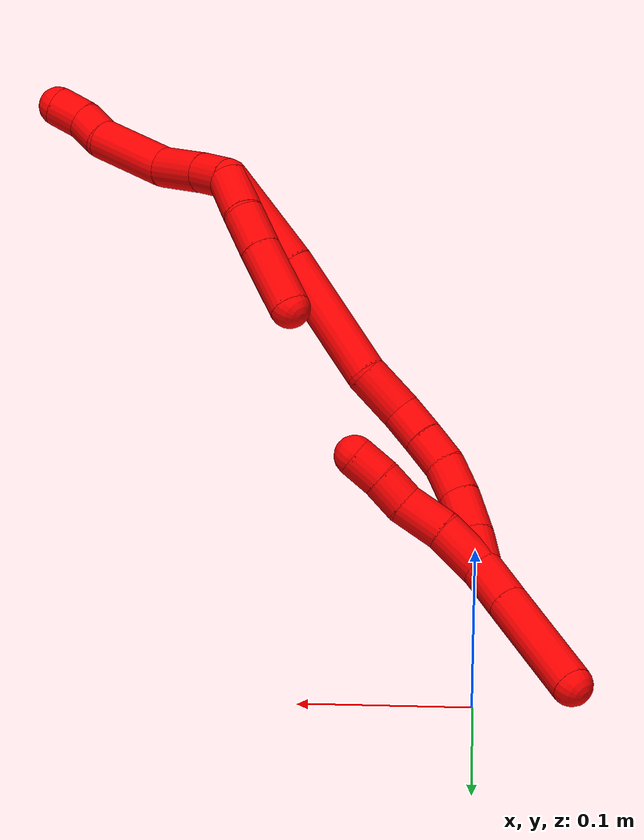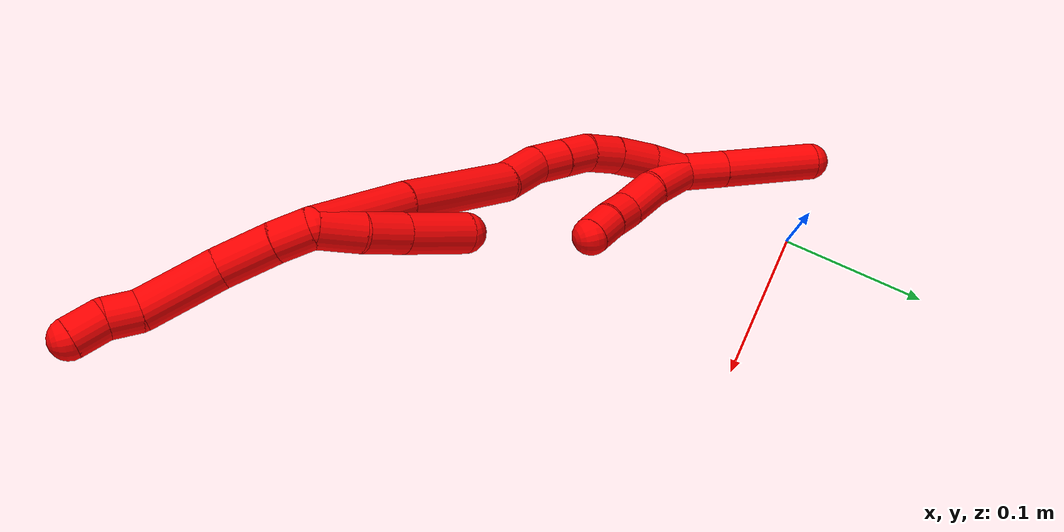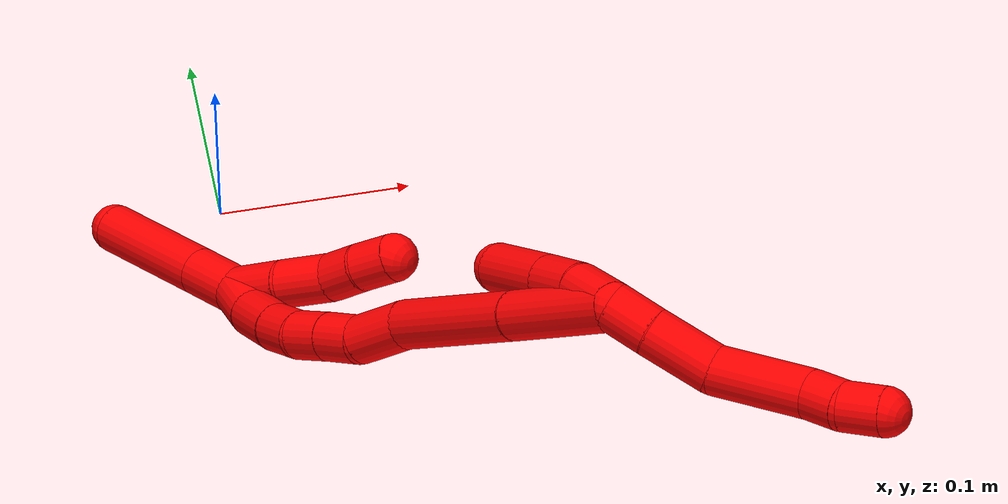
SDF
<sdf version="1.7">
 <world name="default">
  <model name="2">
   <static>0</static>
   <link name="2">
    <collision name="collision-cylinder-e_1_2_8">
     <pose>-0.001127 0.00439 0.010638 -0.391375 -0.097633 0.019368</pose>
     <geometry><cylinder><radius>0.0125</radius><length>0.023128</length></cylinder></geometry>
     <surface>
      <friction><ode><mu>1.16</mu><mu2>1.16</mu2><slip1>0</slip1><slip2>0</slip2></ode></friction>
      <contact><ode><kp>1e+06</kp><kd>1</kd><max_vel>0</max_vel><min_depth>0.001</min_depth></ode></contact>
     </surface>
    </collision>
    <visual name="visual-cylinder-e_1_2_8">
     <pose>-0.001127 0.00439 0.010638 -0.391375 -0.097633 0.019368</pose>
     <geometry><cylinder><radius>0.0125</radius><length>0.023128</length></cylinder></geometry>
     <material><ambient>1 0 0 1</ambient></material>
    </visual>
    <collision name="collision-cylinder-e_2_8_9">
     <pose>-0.004954 0.015936 0.037239 -0.421409 -0.153137 0.032814</pose>
     <geometry><cylinder><radius>0.0125</radius><length>0.0354</length></cylinder></geometry>
     <surface>
      <friction><ode><mu>1.16</mu><mu2>1.16</mu2><slip1>0</slip1><slip2>0</slip2></ode></friction>
      <contact><ode><kp>1e+06</kp><kd>1</kd><max_vel>0</max_vel><min_depth>0.001</min_depth></ode></contact>
     </surface>
    </collision>
    <visual name="visual-cylinder-e_2_8_9">
     <pose>-0.004954 0.015936 0.037239 -0.421409 -0.153137 0.032814</pose>
     <geometry><cylinder><radius>0.0125</radius><length>0.0354</length></cylinder></geometry>
     <material><ambient>1 0 0 1</ambient></material>
    </visual>
    <collision name="collision-cylinder-e_3_9_10">
     <pose>-0.013377 0.025053 0.0775 -0.080558 -0.230589 0.009334</pose>
     <geometry><cylinder><radius>0.0125</radius><length>0.05008</length></cylinder></geometry>
     <surface>
      <friction><ode><mu>1.16</mu><mu2>1.16</mu2><slip1>0</slip1><slip2>0</slip2></ode></friction>
      <contact><ode><kp>1e+06</kp><kd>1</kd><max_vel>0</max_vel><min_depth>0.001</min_depth></ode></contact>
     </surface>
    </collision>
    <visual name="visual-cylinder-e_3_9_10">
     <pose>-0.013377 0.025053 0.0775 -0.080558 -0.230589 0.009334</pose>
     <geometry><cylinder><radius>0.0125</radius><length>0.05008</length></cylinder></geometry>
     <material><ambient>1 0 0 1</ambient></material>
    </visual>
    <collision name="collision-cylinder-e_4_10_11">
     <pose>-0.018625 0.02657 0.111781 0.04448 0.047478 0.001056</pose>
     <geometry><cylinder><radius>0.0125</radius><length>0.020007</length></cylinder></geometry>
     <surface>
      <friction><ode><mu>1.16</mu><mu2>1.16</mu2><slip1>0</slip1><slip2>0</slip2></ode></friction>
      <contact><ode><kp>1e+06</kp><kd>1</kd><max_vel>0</max_vel><min_depth>0.001</min_depth></ode></contact>
     </surface>
    </collision>
    <visual name="visual-cylinder-e_4_10_11">
     <pose>-0.018625 0.02657 0.111781 0.04448 0.047478 0.001056</pose>
     <geometry><cylinder><radius>0.0125</radius><length>0.020007</length></cylinder></geometry>
     <material><ambient>1 0 0 1</ambient></material>
    </visual>
    <collision name="collision-cylinder-e_5_11_6">
     <pose>-0.020895 0.025744 0.132091 0.036989 -0.259541 -0.004828</pose>
     <geometry><cylinder><radius>0.0125</radius><length>0.021385</length></cylinder></geometry>
     <surface>
      <friction><ode><mu>1.16</mu><mu2>1.16</mu2><slip1>0</slip1><slip2>0</slip2></ode></friction>
      <contact><ode><kp>1e+06</kp><kd>1</kd><max_vel>0</max_vel><min_depth>0.001</min_depth></ode></contact>
     </surface>
    </collision>
    <visual name="visual-cylinder-e_5_11_6">
     <pose>-0.020895 0.025744 0.132091 0.036989 -0.259541 -0.004828</pose>
     <geometry><cylinder><radius>0.0125</radius><length>0.021385</length></cylinder></geometry>
     <material><ambient>1 0 0 1</ambient></material>
    </visual>
    <collision name="collision-cylinder-e_1_2_12">
     <pose>-0.004739 0.002224 -0.013664 -2.98027 -0.329818 2.23723</pose>
     <geometry><cylinder><radius>0.0125</radius><length>0.029264</length></cylinder></geometry>
     <surface>
      <friction><ode><mu>1.16</mu><mu2>1.16</mu2><slip1>0</slip1><slip2>0</slip2></ode></friction>
      <contact><ode><kp>1e+06</kp><kd>1</kd><max_vel>0</max_vel><min_depth>0.001</min_depth></ode></contact>
     </surface>
    </collision>
    <visual name="visual-cylinder-e_1_2_12">
     <pose>-0.004739 0.002224 -0.013664 -2.98027 -0.329818 2.23723</pose>
     <geometry><cylinder><radius>0.0125</radius><length>0.029264</length></cylinder></geometry>
     <material><ambient>1 0 0 1</ambient></material>
    </visual>
    <collision name="collision-cylinder-e_2_12_13">
     <pose>-0.012766 0.008512 -0.040108 -2.83366 -0.240443 1.32287</pose>
     <geometry><cylinder><radius>0.0125</radius><length>0.027617</length></cylinder></geometry>
     <surface>
      <friction><ode><mu>1.16</mu><mu2>1.16</mu2><slip1>0</slip1><slip2>0</slip2></ode></friction>
      <contact><ode><kp>1e+06</kp><kd>1</kd><max_vel>0</max_vel><min_depth>0.001</min_depth></ode></contact>
     </surface>
    </collision>
    <visual name="visual-cylinder-e_2_12_13">
     <pose>-0.012766 0.008512 -0.040108 -2.83366 -0.240443 1.32287</pose>
     <geometry><cylinder><radius>0.0125</radius><length>0.027617</length></cylinder></geometry>
     <material><ambient>1 0 0 1</ambient></material>
    </visual>
    <collision name="collision-cylinder-e_3_13_5">
     <pose>-0.020636 0.018869 -0.072994 -2.83831 -0.214163 1.22604</pose>
     <geometry><cylinder><radius>0.0125</radius><length>0.043119</length></cylinder></geometry>
     <surface>
      <friction><ode><mu>1.16</mu><mu2>1.16</mu2><slip1>0</slip1><slip2>0</slip2></ode></friction>
      <contact><ode><kp>1e+06</kp><kd>1</kd><max_vel>0</max_vel><min_depth>0.001</min_depth></ode></contact>
     </surface>
    </collision>
    <visual name="visual-cylinder-e_3_13_5">
     <pose>-0.020636 0.018869 -0.072994 -2.83831 -0.214163 1.22604</pose>
     <geometry><cylinder><radius>0.0125</radius><length>0.043119</length></cylinder></geometry>
     <material><ambient>1 0 0 1</ambient></material>
    </visual>
    <collision name="collision-cylinder-e_1_2_14">
     <pose>0.001053 0.012978 -0.030924 -2.74423 0.03139 -0.155606</pose>
     <geometry><cylinder><radius>0.0125</radius><length>0.067107</length></cylinder></geometry>
     <surface>
      <friction><ode><mu>1.16</mu><mu2>1.16</mu2><slip1>0</slip1><slip2>0</slip2></ode></friction>
      <contact><ode><kp>1e+06</kp><kd>1</kd><max_vel>0</max_vel><min_depth>0.001</min_depth></ode></contact>
     </surface>
    </collision>
    <visual name="visual-cylinder-e_1_2_14">
     <pose>0.001053 0.012978 -0.030924 -2.74423 0.03139 -0.155606</pose>
     <geometry><cylinder><radius>0.0125</radius><length>0.067107</length></cylinder></geometry>
     <material><ambient>1 0 0 1</ambient></material>
    </visual>
    <collision name="collision-cylinder-e_2_14_15">
     <pose>0.000876 0.042611 -0.099413 -2.72429 -0.029926 0.141116</pose>
     <geometry><cylinder><radius>0.0125</radius><length>0.082219</length></cylinder></geometry>
     <surface>
      <friction><ode><mu>1.16</mu><mu2>1.16</mu2><slip1>0</slip1><slip2>0</slip2></ode></friction>
      <contact><ode><kp>1e+06</kp><kd>1</kd><max_vel>0</max_vel><min_depth>0.001</min_depth></ode></contact>
     </surface>
    </collision>
    <visual name="visual-cylinder-e_2_14_15">
     <pose>0.000876 0.042611 -0.099413 -2.72429 -0.029926 0.141116</pose>
     <geometry><cylinder><radius>0.0125</radius><length>0.082219</length></cylinder></geometry>
     <material><ambient>1 0 0 1</ambient></material>
    </visual>
    <collision name="collision-cylinder-e_3_15_16">
     <pose>0.002825 0.066715 -0.150373 -2.63402 0.204496 -0.753379</pose>
     <geometry><cylinder><radius>0.0125</radius><length>0.031308</length></cylinder></geometry>
     <surface>
      <friction><ode><mu>1.16</mu><mu2>1.16</mu2><slip1>0</slip1><slip2>0</slip2></ode></friction>
      <contact><ode><kp>1e+06</kp><kd>1</kd><max_vel>0</max_vel><min_depth>0.001</min_depth></ode></contact>
     </surface>
    </collision>
    <visual name="visual-cylinder-e_3_15_16">
     <pose>0.002825 0.066715 -0.150373 -2.63402 0.204496 -0.753379</pose>
     <geometry><cylinder><radius>0.0125</radius><length>0.031308</length></cylinder></geometry>
     <material><ambient>1 0 0 1</ambient></material>
    </visual>
    <collision name="collision-cylinder-e_4_16_17">
     <pose>0.005948 0.076985 -0.174259 -2.87904 -0.005156 0.039047</pose>
     <geometry><cylinder><radius>0.0125</radius><length>0.021725</length></cylinder></geometry>
     <surface>
      <friction><ode><mu>1.16</mu><mu2>1.16</mu2><slip1>0</slip1><slip2>0</slip2></ode></friction>
      <contact><ode><kp>1e+06</kp><kd>1</kd><max_vel>0</max_vel><min_depth>0.001</min_depth></ode></contact>
     </surface>
    </collision>
    <visual name="visual-cylinder-e_4_16_17">
     <pose>0.005948 0.076985 -0.174259 -2.87904 -0.005156 0.039047</pose>
     <geometry><cylinder><radius>0.0125</radius><length>0.021725</length></cylinder></geometry>
     <material><ambient>1 0 0 1</ambient></material>
    </visual>
    <collision name="collision-cylinder-e_5_17_18">
     <pose>0.00581 0.08301 -0.1951 -2.84125 -0.007563 0.049976</pose>
     <geometry><cylinder><radius>0.0125</radius><length>0.021673</length></cylinder></geometry>
     <surface>
      <friction><ode><mu>1.16</mu><mu2>1.16</mu2><slip1>0</slip1><slip2>0</slip2></ode></friction>
      <contact><ode><kp>1e+06</kp><kd>1</kd><max_vel>0</max_vel><min_depth>0.001</min_depth></ode></contact>
     </surface>
    </collision>
    <visual name="visual-cylinder-e_5_17_18">
     <pose>0.00581 0.08301 -0.1951 -2.84125 -0.007563 0.049976</pose>
     <geometry><cylinder><radius>0.0125</radius><length>0.021673</length></cylinder></geometry>
     <material><ambient>1 0 0 1</ambient></material>
    </visual>
    <collision name="collision-cylinder-e_6_18_19">
     <pose>0.0028 0.089388 -0.216042 -2.85054 -0.258908 1.45254</pose>
     <geometry><cylinder><radius>0.0125</radius><length>0.022875</length></cylinder></geometry>
     <surface>
      <friction><ode><mu>1.16</mu><mu2>1.16</mu2><slip1>0</slip1><slip2>0</slip2></ode></friction>
      <contact><ode><kp>1e+06</kp><kd>1</kd><max_vel>0</max_vel><min_depth>0.001</min_depth></ode></contact>
     </surface>
    </collision>
    <visual name="visual-cylinder-e_6_18_19">
     <pose>0.0028 0.089388 -0.216042 -2.85054 -0.258908 1.45254</pose>
     <geometry><cylinder><radius>0.0125</radius><length>0.022875</length></cylinder></geometry>
     <material><ambient>1 0 0 1</ambient></material>
    </visual>
    <collision name="collision-cylinder-e_7_19_20">
     <pose>-0.005416 0.095822 -0.239543 -2.8942 -0.378009 1.98887</pose>
     <geometry><cylinder><radius>0.0125</radius><length>0.028653</length></cylinder></geometry>
     <surface>
      <friction><ode><mu>1.16</mu><mu2>1.16</mu2><slip1>0</slip1><slip2>0</slip2></ode></friction>
      <contact><ode><kp>1e+06</kp><kd>1</kd><max_vel>0</max_vel><min_depth>0.001</min_depth></ode></contact>
     </surface>
    </collision>
    <visual name="visual-cylinder-e_7_19_20">
     <pose>-0.005416 0.095822 -0.239543 -2.8942 -0.378009 1.98887</pose>
     <geometry><cylinder><radius>0.0125</radius><length>0.028653</length></cylinder></geometry>
     <material><ambient>1 0 0 1</ambient></material>
    </visual>
    <collision name="collision-cylinder-e_8_20_1">
     <pose>-0.016741 0.09976 -0.263056 -3.07779 -0.516722 2.90124</pose>
     <geometry><cylinder><radius>0.0125</radius><length>0.02444</length></cylinder></geometry>
     <surface>
      <friction><ode><mu>1.16</mu><mu2>1.16</mu2><slip1>0</slip1><slip2>0</slip2></ode></friction>
      <contact><ode><kp>1e+06</kp><kd>1</kd><max_vel>0</max_vel><min_depth>0.001</min_depth></ode></contact>
     </surface>
    </collision>
    <visual name="visual-cylinder-e_8_20_1">
     <pose>-0.016741 0.09976 -0.263056 -3.07779 -0.516722 2.90124</pose>
     <geometry><cylinder><radius>0.0125</radius><length>0.02444</length></cylinder></geometry>
     <material><ambient>1 0 0 1</ambient></material>
    </visual>
    <collision name="collision-cylinder-e_1_1_21">
     <pose>-0.02554 0.094883 -0.259296 0.368988 -0.177478 -0.033205</pose>
     <geometry><cylinder><radius>0.0125</radius><length>0.03129</length></cylinder></geometry>
     <surface>
      <friction><ode><mu>1.16</mu><mu2>1.16</mu2><slip1>0</slip1><slip2>0</slip2></ode></friction>
      <contact><ode><kp>1e+06</kp><kd>1</kd><max_vel>0</max_vel><min_depth>0.001</min_depth></ode></contact>
     </surface>
    </collision>
    <visual name="visual-cylinder-e_1_1_21">
     <pose>-0.02554 0.094883 -0.259296 0.368988 -0.177478 -0.033205</pose>
     <geometry><cylinder><radius>0.0125</radius><length>0.03129</length></cylinder></geometry>
     <material><ambient>1 0 0 1</ambient></material>
    </visual>
    <collision name="collision-cylinder-e_2_21_22">
     <pose>-0.03287 0.085686 -0.2322 0.278622 -0.332141 -0.046997</pose>
     <geometry><cylinder><radius>0.0125</radius><length>0.02802</length></cylinder></geometry>
     <surface>
      <friction><ode><mu>1.16</mu><mu2>1.16</mu2><slip1>0</slip1><slip2>0</slip2></ode></friction>
      <contact><ode><kp>1e+06</kp><kd>1</kd><max_vel>0</max_vel><min_depth>0.001</min_depth></ode></contact>
     </surface>
    </collision>
    <visual name="visual-cylinder-e_2_21_22">
     <pose>-0.03287 0.085686 -0.2322 0.278622 -0.332141 -0.046997</pose>
     <geometry><cylinder><radius>0.0125</radius><length>0.02802</length></cylinder></geometry>
     <material><ambient>1 0 0 1</ambient></material>
    </visual>
    <collision name="collision-cylinder-e_3_22_23">
     <pose>-0.039455 0.07716 -0.210754 0.510904 -0.199219 -0.052188</pose>
     <geometry><cylinder><radius>0.0125</radius><length>0.020379</length></cylinder></geometry>
     <surface>
      <friction><ode><mu>1.16</mu><mu2>1.16</mu2><slip1>0</slip1><slip2>0</slip2></ode></friction>
      <contact><ode><kp>1e+06</kp><kd>1</kd><max_vel>0</max_vel><min_depth>0.001</min_depth></ode></contact>
     </surface>
    </collision>
    <visual name="visual-cylinder-e_3_22_23">
     <pose>-0.039455 0.07716 -0.210754 0.510904 -0.199219 -0.052188</pose>
     <geometry><cylinder><radius>0.0125</radius><length>0.020379</length></cylinder></geometry>
     <material><ambient>1 0 0 1</ambient></material>
    </visual>
    <collision name="collision-cylinder-e_4_23_4">
     <pose>-0.044528 0.06817 -0.19327 0.437823 -0.305765 -0.068534</pose>
     <geometry><cylinder><radius>0.0125</radius><length>0.020311</length></cylinder></geometry>
     <surface>
      <friction><ode><mu>1.16</mu><mu2>1.16</mu2><slip1>0</slip1><slip2>0</slip2></ode></friction>
      <contact><ode><kp>1e+06</kp><kd>1</kd><max_vel>0</max_vel><min_depth>0.001</min_depth></ode></contact>
     </surface>
    </collision>
    <visual name="visual-cylinder-e_4_23_4">
     <pose>-0.044528 0.06817 -0.19327 0.437823 -0.305765 -0.068534</pose>
     <geometry><cylinder><radius>0.0125</radius><length>0.020311</length></cylinder></geometry>
     <material><ambient>1 0 0 1</ambient></material>
    </visual>
    <collision name="collision-cylinder-e_1_1_24">
     <pose>-0.025335 0.101151 -0.288696 -3.09414 -0.168286 2.59301</pose>
     <geometry><cylinder><radius>0.0125</radius><length>0.030539</length></cylinder></geometry>
     <surface>
      <friction><ode><mu>1.16</mu><mu2>1.16</mu2><slip1>0</slip1><slip2>0</slip2></ode></friction>
      <contact><ode><kp>1e+06</kp><kd>1</kd><max_vel>0</max_vel><min_depth>0.001</min_depth></ode></contact>
     </surface>
    </collision>
    <visual name="visual-cylinder-e_1_1_24">
     <pose>-0.025335 0.101151 -0.288696 -3.09414 -0.168286 2.59301</pose>
     <geometry><cylinder><radius>0.0125</radius><length>0.030539</length></cylinder></geometry>
     <material><ambient>1 0 0 1</ambient></material>
    </visual>
    <collision name="collision-cylinder-e_2_24_3">
     <pose>-0.033461 0.103377 -0.33798 -3.0975 -0.16101 2.60799</pose>
     <geometry><cylinder><radius>0.0125</radius><length>0.069461</length></cylinder></geometry>
     <surface>
      <friction><ode><mu>1.16</mu><mu2>1.16</mu2><slip1>0</slip1><slip2>0</slip2></ode></friction>
      <contact><ode><kp>1e+06</kp><kd>1</kd><max_vel>0</max_vel><min_depth>0.001</min_depth></ode></contact>
     </surface>
    </collision>
    <visual name="visual-cylinder-e_2_24_3">
     <pose>-0.033461 0.103377 -0.33798 -3.0975 -0.16101 2.60799</pose>
     <geometry><cylinder><radius>0.0125</radius><length>0.069461</length></cylinder></geometry>
     <material><ambient>1 0 0 1</ambient></material>
    </visual>
    <collision name="collision-sphere-3">
     <pose>-0.039028 0.104888 -0.372228 0 -0 0</pose>
     <geometry><sphere><radius>0.0125</radius></sphere></geometry>
     <surface>
      <friction><ode><mu>1.16</mu><mu2>1.16</mu2><slip1>0</slip1><slip2>0</slip2></ode></friction>
      <contact><ode><kp>1e+06</kp><kd>1</kd><max_vel>0</max_vel><min_depth>0.001</min_depth></ode></contact>
     </surface>
    </collision>
    <visual name="visual-sphere-3">
     <pose>-0.039028 0.104888 -0.372228 0 -0 0</pose>
     <geometry><sphere><radius>0.0125</radius></sphere></geometry>
     <material><ambient>1 0 0 1</ambient></material>
    </visual>
    <collision name="collision-sphere-24">
     <pose>-0.027893 0.101865 -0.303733 0 -0 0</pose>
     <geometry><sphere><radius>0.0125</radius></sphere></geometry>
     <surface>
      <friction><ode><mu>1.16</mu><mu2>1.16</mu2><slip1>0</slip1><slip2>0</slip2></ode></friction>
      <contact><ode><kp>1e+06</kp><kd>1</kd><max_vel>0</max_vel><min_depth>0.001</min_depth></ode></contact>
     </surface>
    </collision>
    <visual name="visual-sphere-24">
     <pose>-0.027893 0.101865 -0.303733 0 -0 0</pose>
     <geometry><sphere><radius>0.0125</radius></sphere></geometry>
     <material><ambient>1 0 0 1</ambient></material>
    </visual>
    <collision name="collision-sphere-4">
     <pose>-0.047586 0.064065 -0.184499 0 -0 0</pose>
     <geometry><sphere><radius>0.0125</radius></sphere></geometry>
     <surface>
      <friction><ode><mu>1.16</mu><mu2>1.16</mu2><slip1>0</slip1><slip2>0</slip2></ode></friction>
      <contact><ode><kp>1e+06</kp><kd>1</kd><max_vel>0</max_vel><min_depth>0.001</min_depth></ode></contact>
     </surface>
    </collision>
    <visual name="visual-sphere-4">
     <pose>-0.047586 0.064065 -0.184499 0 -0 0</pose>
     <geometry><sphere><radius>0.0125</radius></sphere></geometry>
     <material><ambient>1 0 0 1</ambient></material>
    </visual>
    <collision name="collision-sphere-23">
     <pose>-0.041471 0.072276 -0.202041 0 -0 0</pose>
     <geometry><sphere><radius>0.0125</radius></sphere></geometry>
     <surface>
      <friction><ode><mu>1.16</mu><mu2>1.16</mu2><slip1>0</slip1><slip2>0</slip2></ode></friction>
      <contact><ode><kp>1e+06</kp><kd>1</kd><max_vel>0</max_vel><min_depth>0.001</min_depth></ode></contact>
     </surface>
    </collision>
    <visual name="visual-sphere-23">
     <pose>-0.041471 0.072276 -0.202041 0 -0 0</pose>
     <geometry><sphere><radius>0.0125</radius></sphere></geometry>
     <material><ambient>1 0 0 1</ambient></material>
    </visual>
    <collision name="collision-sphere-22">
     <pose>-0.037438 0.082044 -0.219466 0 -0 0</pose>
     <geometry><sphere><radius>0.0125</radius></sphere></geometry>
     <surface>
      <friction><ode><mu>1.16</mu><mu2>1.16</mu2><slip1>0</slip1><slip2>0</slip2></ode></friction>
      <contact><ode><kp>1e+06</kp><kd>1</kd><max_vel>0</max_vel><min_depth>0.001</min_depth></ode></contact>
     </surface>
    </collision>
    <visual name="visual-sphere-22">
     <pose>-0.037438 0.082044 -0.219466 0 -0 0</pose>
     <geometry><sphere><radius>0.0125</radius></sphere></geometry>
     <material><ambient>1 0 0 1</ambient></material>
    </visual>
    <collision name="collision-sphere-21">
     <pose>-0.028302 0.089329 -0.244933 0 -0 0</pose>
     <geometry><sphere><radius>0.0125</radius></sphere></geometry>
     <surface>
      <friction><ode><mu>1.16</mu><mu2>1.16</mu2><slip1>0</slip1><slip2>0</slip2></ode></friction>
      <contact><ode><kp>1e+06</kp><kd>1</kd><max_vel>0</max_vel><min_depth>0.001</min_depth></ode></contact>
     </surface>
    </collision>
    <visual name="visual-sphere-21">
     <pose>-0.028302 0.089329 -0.244933 0 -0 0</pose>
     <geometry><sphere><radius>0.0125</radius></sphere></geometry>
     <material><ambient>1 0 0 1</ambient></material>
    </visual>
    <collision name="collision-sphere-1">
     <pose>-0.022778 0.100437 -0.273659 0 -0 0</pose>
     <geometry><sphere><radius>0.0125</radius></sphere></geometry>
     <surface>
      <friction><ode><mu>1.16</mu><mu2>1.16</mu2><slip1>0</slip1><slip2>0</slip2></ode></friction>
      <contact><ode><kp>1e+06</kp><kd>1</kd><max_vel>0</max_vel><min_depth>0.001</min_depth></ode></contact>
     </surface>
    </collision>
    <visual name="visual-sphere-1">
     <pose>-0.022778 0.100437 -0.273659 0 -0 0</pose>
     <geometry><sphere><radius>0.0125</radius></sphere></geometry>
     <material><ambient>1 0 0 1</ambient></material>
    </visual>
    <collision name="collision-sphere-6">
     <pose>-0.023639 0.025361 0.142418 0 -0 0</pose>
     <geometry><sphere><radius>0.0125</radius></sphere></geometry>
     <surface>
      <friction><ode><mu>1.16</mu><mu2>1.16</mu2><slip1>0</slip1><slip2>0</slip2></ode></friction>
      <contact><ode><kp>1e+06</kp><kd>1</kd><max_vel>0</max_vel><min_depth>0.001</min_depth></ode></contact>
     </surface>
    </collision>
    <visual name="visual-sphere-6">
     <pose>-0.023639 0.025361 0.142418 0 -0 0</pose>
     <geometry><sphere><radius>0.0125</radius></sphere></geometry>
     <material><ambient>1 0 0 1</ambient></material>
    </visual>
    <collision name="collision-sphere-11">
     <pose>-0.018151 0.026126 0.121763 0 -0 0</pose>
     <geometry><sphere><radius>0.0125</radius></sphere></geometry>
     <surface>
      <friction><ode><mu>1.16</mu><mu2>1.16</mu2><slip1>0</slip1><slip2>0</slip2></ode></friction>
      <contact><ode><kp>1e+06</kp><kd>1</kd><max_vel>0</max_vel><min_depth>0.001</min_depth></ode></contact>
     </surface>
    </collision>
    <visual name="visual-sphere-11">
     <pose>-0.018151 0.026126 0.121763 0 -0 0</pose>
     <geometry><sphere><radius>0.0125</radius></sphere></geometry>
     <material><ambient>1 0 0 1</ambient></material>
    </visual>
    <collision name="collision-sphere-10">
     <pose>-0.0191 0.027014 0.101798 0 -0 0</pose>
     <geometry><sphere><radius>0.0125</radius></sphere></geometry>
     <surface>
      <friction><ode><mu>1.16</mu><mu2>1.16</mu2><slip1>0</slip1><slip2>0</slip2></ode></friction>
      <contact><ode><kp>1e+06</kp><kd>1</kd><max_vel>0</max_vel><min_depth>0.001</min_depth></ode></contact>
     </surface>
    </collision>
    <visual name="visual-sphere-10">
     <pose>-0.0191 0.027014 0.101798 0 -0 0</pose>
     <geometry><sphere><radius>0.0125</radius></sphere></geometry>
     <material><ambient>1 0 0 1</ambient></material>
    </visual>
    <collision name="collision-sphere-9">
     <pose>-0.007654 0.023091 0.053202 0 -0 0</pose>
     <geometry><sphere><radius>0.0125</radius></sphere></geometry>
     <surface>
      <friction><ode><mu>1.16</mu><mu2>1.16</mu2><slip1>0</slip1><slip2>0</slip2></ode></friction>
      <contact><ode><kp>1e+06</kp><kd>1</kd><max_vel>0</max_vel><min_depth>0.001</min_depth></ode></contact>
     </surface>
    </collision>
    <visual name="visual-sphere-9">
     <pose>-0.007654 0.023091 0.053202 0 -0 0</pose>
     <geometry><sphere><radius>0.0125</radius></sphere></geometry>
     <material><ambient>1 0 0 1</ambient></material>
    </visual>
    <collision name="collision-sphere-2">
     <geometry><sphere><radius>0.0125</radius></sphere></geometry>
     <surface>
      <friction><ode><mu>1.16</mu><mu2>1.16</mu2><slip1>0</slip1><slip2>0</slip2></ode></friction>
      <contact><ode><kp>1e+06</kp><kd>1</kd><max_vel>0</max_vel><min_depth>0.001</min_depth></ode></contact>
     </surface>
    </collision>
    <visual name="visual-sphere-2">
     <geometry><sphere><radius>0.0125</radius></sphere></geometry>
     <material><ambient>1 0 0 1</ambient></material>
    </visual>
    <collision name="collision-sphere-19">
     <pose>-0.000129 0.092561 -0.226634 0 -0 0</pose>
     <geometry><sphere><radius>0.0125</radius></sphere></geometry>
     <surface>
      <friction><ode><mu>1.16</mu><mu2>1.16</mu2><slip1>0</slip1><slip2>0</slip2></ode></friction>
      <contact><ode><kp>1e+06</kp><kd>1</kd><max_vel>0</max_vel><min_depth>0.001</min_depth></ode></contact>
     </surface>
    </collision>
    <visual name="visual-sphere-19">
     <pose>-0.000129 0.092561 -0.226634 0 -0 0</pose>
     <geometry><sphere><radius>0.0125</radius></sphere></geometry>
     <material><ambient>1 0 0 1</ambient></material>
    </visual>
    <collision name="collision-sphere-8">
     <pose>-0.002254 0.00878 0.021277 0 -0 0</pose>
     <geometry><sphere><radius>0.0125</radius></sphere></geometry>
     <surface>
      <friction><ode><mu>1.16</mu><mu2>1.16</mu2><slip1>0</slip1><slip2>0</slip2></ode></friction>
      <contact><ode><kp>1e+06</kp><kd>1</kd><max_vel>0</max_vel><min_depth>0.001</min_depth></ode></contact>
     </surface>
    </collision>
    <visual name="visual-sphere-8">
     <pose>-0.002254 0.00878 0.021277 0 -0 0</pose>
     <geometry><sphere><radius>0.0125</radius></sphere></geometry>
     <material><ambient>1 0 0 1</ambient></material>
    </visual>
    <collision name="collision-sphere-12">
     <pose>-0.009478 0.004447 -0.027327 0 -0 0</pose>
     <geometry><sphere><radius>0.0125</radius></sphere></geometry>
     <surface>
      <friction><ode><mu>1.16</mu><mu2>1.16</mu2><slip1>0</slip1><slip2>0</slip2></ode></friction>
      <contact><ode><kp>1e+06</kp><kd>1</kd><max_vel>0</max_vel><min_depth>0.001</min_depth></ode></contact>
     </surface>
    </collision>
    <visual name="visual-sphere-12">
     <pose>-0.009478 0.004447 -0.027327 0 -0 0</pose>
     <geometry><sphere><radius>0.0125</radius></sphere></geometry>
     <material><ambient>1 0 0 1</ambient></material>
    </visual>
    <collision name="collision-sphere-13">
     <pose>-0.016054 0.012577 -0.052888 0 -0 0</pose>
     <geometry><sphere><radius>0.0125</radius></sphere></geometry>
     <surface>
      <friction><ode><mu>1.16</mu><mu2>1.16</mu2><slip1>0</slip1><slip2>0</slip2></ode></friction>
      <contact><ode><kp>1e+06</kp><kd>1</kd><max_vel>0</max_vel><min_depth>0.001</min_depth></ode></contact>
     </surface>
    </collision>
    <visual name="visual-sphere-13">
     <pose>-0.016054 0.012577 -0.052888 0 -0 0</pose>
     <geometry><sphere><radius>0.0125</radius></sphere></geometry>
     <material><ambient>1 0 0 1</ambient></material>
    </visual>
    <collision name="collision-sphere-5">
     <pose>-0.025218 0.02516 -0.093099 0 -0 0</pose>
     <geometry><sphere><radius>0.0125</radius></sphere></geometry>
     <surface>
      <friction><ode><mu>1.16</mu><mu2>1.16</mu2><slip1>0</slip1><slip2>0</slip2></ode></friction>
      <contact><ode><kp>1e+06</kp><kd>1</kd><max_vel>0</max_vel><min_depth>0.001</min_depth></ode></contact>
     </surface>
    </collision>
    <visual name="visual-sphere-5">
     <pose>-0.025218 0.02516 -0.093099 0 -0 0</pose>
     <geometry><sphere><radius>0.0125</radius></sphere></geometry>
     <material><ambient>1 0 0 1</ambient></material>
    </visual>
    <collision name="collision-sphere-14">
     <pose>0.002106 0.025957 -0.061848 0 -0 0</pose>
     <geometry><sphere><radius>0.0125</radius></sphere></geometry>
     <surface>
      <friction><ode><mu>1.16</mu><mu2>1.16</mu2><slip1>0</slip1><slip2>0</slip2></ode></friction>
      <contact><ode><kp>1e+06</kp><kd>1</kd><max_vel>0</max_vel><min_depth>0.001</min_depth></ode></contact>
     </surface>
    </collision>
    <visual name="visual-sphere-14">
     <pose>0.002106 0.025957 -0.061848 0 -0 0</pose>
     <geometry><sphere><radius>0.0125</radius></sphere></geometry>
     <material><ambient>1 0 0 1</ambient></material>
    </visual>
    <collision name="collision-sphere-15">
     <pose>-0.000354 0.059265 -0.136978 0 -0 0</pose>
     <geometry><sphere><radius>0.0125</radius></sphere></geometry>
     <surface>
      <friction><ode><mu>1.16</mu><mu2>1.16</mu2><slip1>0</slip1><slip2>0</slip2></ode></friction>
      <contact><ode><kp>1e+06</kp><kd>1</kd><max_vel>0</max_vel><min_depth>0.001</min_depth></ode></contact>
     </surface>
    </collision>
    <visual name="visual-sphere-15">
     <pose>-0.000354 0.059265 -0.136978 0 -0 0</pose>
     <geometry><sphere><radius>0.0125</radius></sphere></geometry>
     <material><ambient>1 0 0 1</ambient></material>
    </visual>
    <collision name="collision-sphere-16">
     <pose>0.006004 0.074165 -0.163768 0 -0 0</pose>
     <geometry><sphere><radius>0.0125</radius></sphere></geometry>
     <surface>
      <friction><ode><mu>1.16</mu><mu2>1.16</mu2><slip1>0</slip1><slip2>0</slip2></ode></friction>
      <contact><ode><kp>1e+06</kp><kd>1</kd><max_vel>0</max_vel><min_depth>0.001</min_depth></ode></contact>
     </surface>
    </collision>
    <visual name="visual-sphere-16">
     <pose>0.006004 0.074165 -0.163768 0 -0 0</pose>
     <geometry><sphere><radius>0.0125</radius></sphere></geometry>
     <material><ambient>1 0 0 1</ambient></material>
    </visual>
    <collision name="collision-sphere-17">
     <pose>0.005892 0.079804 -0.184749 0 -0 0</pose>
     <geometry><sphere><radius>0.0125</radius></sphere></geometry>
     <surface>
      <friction><ode><mu>1.16</mu><mu2>1.16</mu2><slip1>0</slip1><slip2>0</slip2></ode></friction>
      <contact><ode><kp>1e+06</kp><kd>1</kd><max_vel>0</max_vel><min_depth>0.001</min_depth></ode></contact>
     </surface>
    </collision>
    <visual name="visual-sphere-17">
     <pose>0.005892 0.079804 -0.184749 0 -0 0</pose>
     <geometry><sphere><radius>0.0125</radius></sphere></geometry>
     <material><ambient>1 0 0 1</ambient></material>
    </visual>
    <collision name="collision-sphere-18">
     <pose>0.005728 0.086216 -0.205451 0 -0 0</pose>
     <geometry><sphere><radius>0.0125</radius></sphere></geometry>
     <surface>
      <friction><ode><mu>1.16</mu><mu2>1.16</mu2><slip1>0</slip1><slip2>0</slip2></ode></friction>
      <contact><ode><kp>1e+06</kp><kd>1</kd><max_vel>0</max_vel><min_depth>0.001</min_depth></ode></contact>
     </surface>
    </collision>
    <visual name="visual-sphere-18">
     <pose>0.005728 0.086216 -0.205451 0 -0 0</pose>
     <geometry><sphere><radius>0.0125</radius></sphere></geometry>
     <material><ambient>1 0 0 1</ambient></material>
    </visual>
    <collision name="collision-sphere-20">
     <pose>-0.010704 0.099082 -0.252453 0 -0 0</pose>
     <geometry><sphere><radius>0.0125</radius></sphere></geometry>
     <surface>
      <friction><ode><mu>1.16</mu><mu2>1.16</mu2><slip1>0</slip1><slip2>0</slip2></ode></friction>
      <contact><ode><kp>1e+06</kp><kd>1</kd><max_vel>0</max_vel><min_depth>0.001</min_depth></ode></contact>
     </surface>
    </collision>
    <visual name="visual-sphere-20">
     <pose>-0.010704 0.099082 -0.252453 0 -0 0</pose>
     <geometry><sphere><radius>0.0125</radius></sphere></geometry>
     <material><ambient>1 0 0 1</ambient></material>
    </visual>
    <inertial>
     <pose>-0.012817 0.053168 -0.120649 0 -0 0</pose>
     <mass>0.75</mass>
     <inertia><ixx>0.00011</ixx><ixy>0</ixy><ixz>0</ixz><iyy>3.2e-05</iyy><iyz>0</iyz><izz>-4.1e-05</izz></inertia>
    </inertial>
   </link>
   <pose>0.153203 -0.26031 0.220019 -1.28721 -0.178024 -2.44149</pose>
  </model>
 </world>
</sdf>
